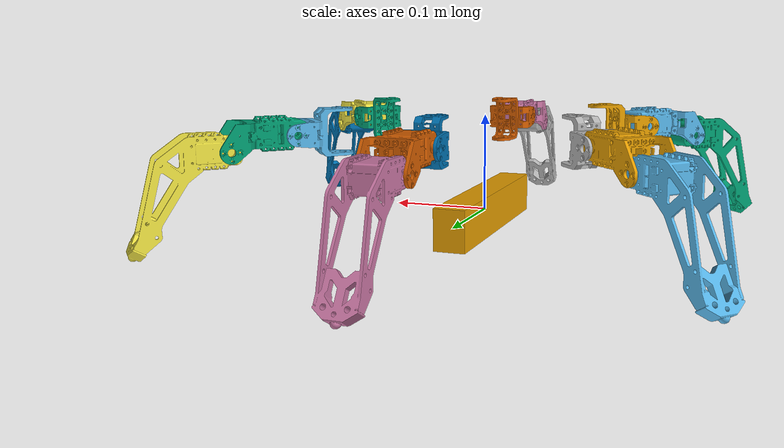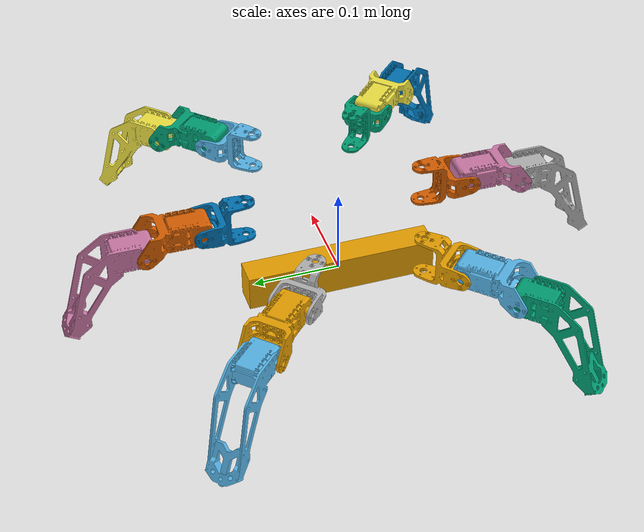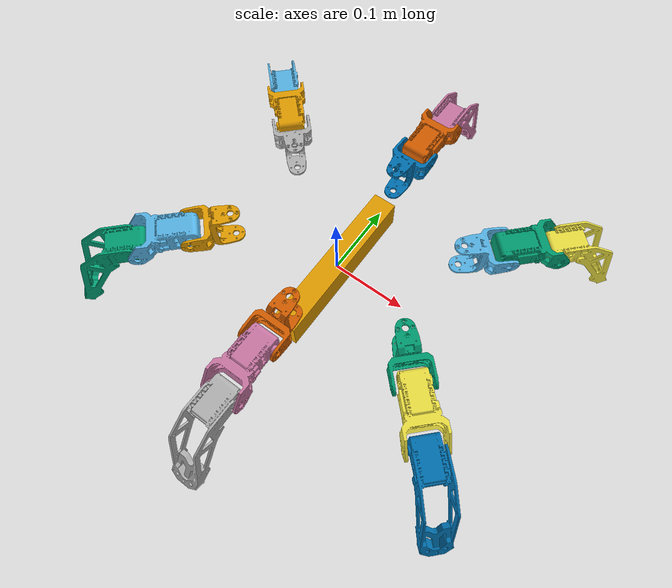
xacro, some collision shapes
<?xml version="1.0"?>
<robot name="Leptan" xmlns:xacro="http://ros.org/wiki/xacro">

  <!-- parameters -->
  <xacro:property name="coxa_length" value="0.052" />
  <xacro:property name="femur_length" value="0.0645" />
  <xacro:property name="tibia_length" value="0.133" />
  <xacro:property name="ground_offset" value="0.10" />
  <xacro:property name="offset_y_f" value="0.06091" />
  <xacro:property name="offset_y_r" value="0.06091" />
  <xacro:property name="offset_y1" value="0.1035" />
  <xacro:property name="offset_x_f" value="0.13525" />
  <xacro:property name="offset_x_r" value="0.10731" />

  <xacro:macro name="inert" params="mass">
    <inertial>
      <mass value="${mass}" />
      <inertia ixx="1.0" ixy="0.0" ixz="0.0" iyy="1.0" iyz="0.0" izz="1.0" />
    </inertial>
  </xacro:macro>

  <link name="base_link">
    <collision name="collision">
      <geometry>
        <box size="0.032 0.22 0.042"/>
      </geometry>
    </collision>
    <visual name="visual">
      <geometry>
        <mesh filename="package://hexapod_description_mk2/meshes/Body.dae"/>
      </geometry>
      <origin rpy="${pi} 0 ${3*pi/2}" xyz="0.006985 0.0 ${ground_offset}"/>
    </visual>
  </link>

  <!--Leg macro-->
  <xacro:macro name="leg" params="side position x y angle axis">
    <!--Coxa-->
    <link name="coxa_link_${side}${position}">
      <visual>
        <geometry>
          <mesh filename="package://hexapod_description_mk2/meshes/Coxa.dae"/>
        </geometry>
        <origin rpy="0 ${pi/2} ${(2-axis)/2*pi}" xyz="0 0.0 0.0"/>
      </visual>
    </link>

    <joint name="COXA_${side}${position}" type="revolute">
      <child link="coxa_link_${side}${position}"/>
      <parent link="base_link"/>
      <origin rpy="0 0 ${angle}" xyz="${x} ${y} ${ground_offset-0.015}"/>
      <axis xyz="0 0 ${-axis}"/>
      <limit effort="1000.0" lower="${-pi/2}" upper="${pi/2}" velocity="0.5"/>
    </joint>

    <!--Femur-->
    <link name="femur_link_${side}${position}">
      <collision name="collision">
        <geometry>
          <box size="0.024 0.025 0.048"/>
        </geometry>
      </collision>
      <visual name="visual">
        <origin rpy="${3*pi/2} 0 ${3*pi/2}" xyz="0 0 0"/>
        <geometry>
          <mesh filename="package://hexapod_description_mk2/meshes/Femur.dae"/>
        </geometry>
      </visual>
    </link>

    <joint name="FEMUR_${side}${position}" type="revolute">
      <origin rpy="0 0 ${(1-axis)/2*pi}" xyz="0 ${axis*(coxa_length)} 0.001418"/>
      <child link="femur_link_${side}${position}"/>
      <parent link="coxa_link_${side}${position}"/>
      <axis xyz="1 0 0"/>
      <limit effort="1000.0" lower="-2.4" upper="2.4" velocity="0.5"/>
    </joint>

    <!--Tibia-->
    <link name="tibia_link_${side}${position}">
      <collision name="collision">
        <origin rpy="0 ${pi} ${pi/2}" xyz="0 0 0"/>
        <geometry>
          <mesh filename="package://hexapod_description_mk2/meshes/TibiaCol.dae"/>
        </geometry>
      </collision>
      <visual name="visual">
        <origin rpy="0 ${pi} ${pi/2}" xyz="0 0 0"/>
        <geometry>
          <mesh filename="package://hexapod_description_mk2/meshes/Tibia.dae"/>
        </geometry>
      </visual>
    </link>

    <joint name="TIBIA_${side}${position}" type="revolute">
      <origin rpy="0 0 0" xyz="0 ${femur_length} -0.0145"/>
      <child link="tibia_link_${side}${position}"/>
      <parent link="femur_link_${side}${position}"/>
      <axis xyz="1 0 0"/>
      <limit effort="1000.0" lower="-2.3" upper="2.3" velocity="0.5"/>
    </joint>
  </xacro:macro>

  <xacro:leg side="L" position="F" x="${offset_x_f}"  y="${offset_y_f}"   angle="${-pi/4}"  axis="1"/>
  <xacro:leg side="L" position="M" x="0.01397"        y="0.1035"          angle="0"         axis="1"/>
  <xacro:leg side="L" position="R" x="${-offset_x_r}" y="${offset_y_r}"   angle="${pi/4}"   axis="1"/>
  <xacro:leg side="R" position="F" x="${offset_x_f}"  y="${-offset_y_f}"  angle="${pi/4}"   axis="-1"/>
  <xacro:leg side="R" position="M" x="0.01397"        y="${-offset_y1}"   angle="0"         axis="-1"/>
  <xacro:leg side="R" position="R" x="${-offset_x_r}" y="${-offset_y_r}"  angle="${-pi/4}"  axis="-1"/>

</robot>
